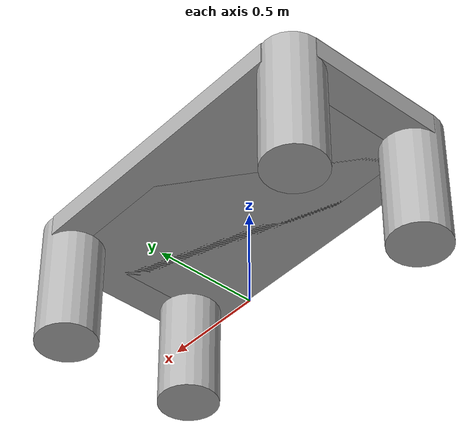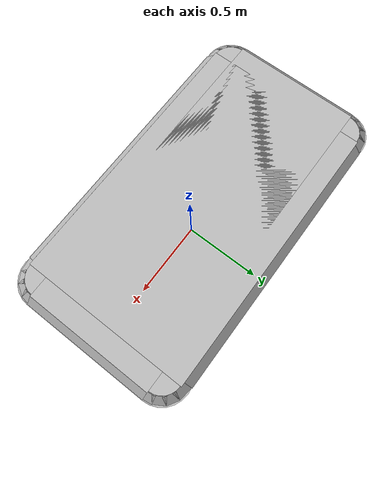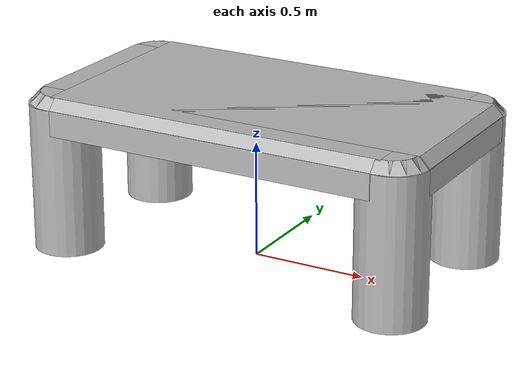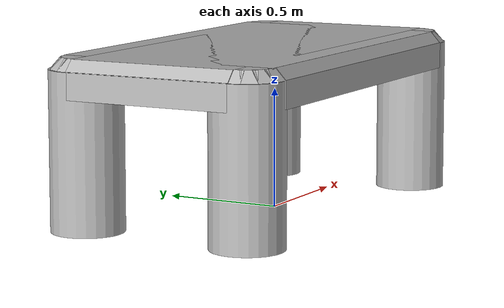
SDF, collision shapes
<?xml version="1.0" ?>
<sdf version="1.5">
  <model name="space_table">
    <static>true</static>

    <link name="link">

      <collision name="leg_1">
        <pose>-0.764945 -0.284224 0.317189 0 0 0</pose>
        <geometry>
          <cylinder>
           <radius>0.149455</radius>
           <length>0.648382</length>
          </cylinder>
        </geometry>
        <max_contacts>5</max_contacts>
      </collision>

      <collision name="leg_2">
        <pose>-0.764945 0.432866 0.317189 0 0 0</pose>
        <geometry>
          <cylinder>
           <radius>0.149455</radius>
           <length>0.648382</length>
          </cylinder>
        </geometry>
        <max_contacts>5</max_contacts>
      </collision>

      <collision name="leg_3">
        <pose>0.764945 -0.284224 0.317189 0 0 0</pose>
        <geometry>
          <cylinder>
           <radius>0.149455</radius>
           <length>0.648382</length>
          </cylinder>
        </geometry>
        <max_contacts>5</max_contacts>
      </collision>

      <collision name="leg_4">
        <pose>0.764945 0.432866 0.317189 0 0 0</pose>
        <geometry>
          <cylinder>
           <radius>0.149455</radius>
           <length>0.648382</length>
          </cylinder>
        </geometry>
        <max_contacts>5</max_contacts>
      </collision>

      <collision name="top_1">
        <pose>0 0.07432 0.588624 0 0 0</pose>
        <geometry>
          <box>
           <size>1.472479 1.016692 0.110764</size>
          </box>
        </geometry>
        <surface>
          <contact>
            <ode>
              <kp>1e5</kp>
              <kd>1</kd>
              <max_vel>0.1</max_vel>
              <min_depth>0.0015</min_depth>
            </ode>
          </contact>
        </surface>
      </collision>

      <collision name="top_2">
        <pose>0 0.07432 0.588624 0 0 0</pose>
        <geometry>
          <box>
           <size>1.82739 0.712958 0.110764</size>
          </box>
        </geometry>
        <surface>
          <contact>
            <ode>
              <kp>1e5</kp>
              <kd>1</kd>
              <max_vel>0.1</max_vel>
              <min_depth>0.0015</min_depth>
            </ode>
          </contact>
        </surface>
      </collision>

      <collision name="top_3">
        <pose>0 0.07432 0.61863 0 0 0</pose>
        <geometry>
          <box>
           <size>1.517309 0.929015 0.141255</size>
          </box>
        </geometry>
        <surface>
          <contact>
            <ode>
              <kp>1e5</kp>
              <kd>1</kd>
              <max_vel>0.1</max_vel>
              <min_depth>0.0015</min_depth>
            </ode>
          </contact>
        </surface>
      </collision>

      <collision name="top_4">
        <pose>0 0.07432 0.61863 0 0 0</pose>
        <geometry>
          <box>
           <size>1.741564 0.714353 0.141255</size>
          </box>
        </geometry>
        <surface>
          <contact>
            <ode>
              <kp>1e5</kp>
              <kd>1</kd>
              <max_vel>0.1</max_vel>
              <min_depth>0.0015</min_depth>
            </ode>
          </contact>
        </surface>
      </collision>

      <collision name="side_1">
        <pose>0 -0.402876 0.657118 -0.744512 0 0</pose>
        <geometry>
          <box>
           <size>1.472479 0.025006 0.064007</size>
          </box>
        </geometry>
        <max_contacts>5</max_contacts>
      </collision>

      <collision name="side_2">
        <pose>0 0.551784 0.657118 0.744512 0 0</pose>
        <geometry>
          <box>
           <size>1.472479 0.025006 0.064007</size>
          </box>
        </geometry>
        <max_contacts>5</max_contacts>
      </collision>

      <collision name="side_3">
        <pose>0.883448 0.07432 0.657118 0.744512 0 -1.5707</pose>
        <geometry>
          <box>
           <size>0.712958 0.025006 0.064007</size>
          </box>
        </geometry>
        <max_contacts>5</max_contacts>
      </collision>

      <collision name="side_4">
        <pose>-0.883448 0.07432 0.657118 -0.744512 0 -1.5707</pose>
        <geometry>
          <box>
           <size>0.712958 0.025006 0.064007</size>
          </box>
        </geometry>
        <max_contacts>5</max_contacts>
      </collision>

      <collision name="corner_1">
        <pose>0.758137 0.430006 0.656031 0 0 0</pose>
        <geometry>
          <cylinder>
           <radius>0.10331</radius>
           <length>0.066452</length>
          </cylinder>
        </geometry>
        <max_contacts>5</max_contacts>
      </collision>

      <collision name="corner_2">
        <pose>-0.758137 0.430006 0.656031 0 0 0</pose>
        <geometry>
          <cylinder>
           <radius>0.10331</radius>
           <length>0.066452</length>
          </cylinder>
        </geometry>
        <max_contacts>5</max_contacts>
      </collision>

      <collision name="corner_3">
        <pose>0.758137 -0.282311 0.656031 0 0 0</pose>
        <geometry>
          <cylinder>
           <radius>0.10331</radius>
           <length>0.066452</length>
          </cylinder>
        </geometry>
        <max_contacts>5</max_contacts>
      </collision>

      <collision name="corner_4">
        <pose>-0.758137 -0.282311 0.656031 0 0 0</pose>
        <geometry>
          <cylinder>
           <radius>0.10331</radius>
           <length>0.066452</length>
          </cylinder>
        </geometry>
        <max_contacts>5</max_contacts>
      </collision>

      <collision name="corner_1_a">
        <pose>0.769 0.543695 0.657118 -0.744512 0 2.999042654</pose>
        <geometry>
          <box>
           <size>0.075 0.025006 0.064007</size>
          </box>
        </geometry>
        <max_contacts>5</max_contacts>
      </collision>

      <collision name="corner_1_b">
        <pose>0.823 0.525499 0.657118 -0.744512 0 2.599042654</pose>
        <geometry>
          <box>
           <size>0.066 0.025006 0.064007</size>
          </box>
        </geometry>
        <max_contacts>5</max_contacts>
      </collision>

      <collision name="corner_1_c">
        <pose>0.858 0.489695 0.657118 -0.744512 0 2.108592654</pose>
        <geometry>
          <box>
           <size>0.067 0.025006 0.064007</size>
          </box>
        </geometry>
        <max_contacts>5</max_contacts>
      </collision>

      <collision name="corner_1_d">
        <pose>0.875288 0.448695 0.657118 -0.744512 0 1.721592654</pose>
        <geometry>
          <box>
           <size>0.048 0.025006 0.064007</size>
          </box>
        </geometry>
        <max_contacts>5</max_contacts>
      </collision>

      <collision name="corner_2_a">
        <pose>-0.769 0.543695 0.657118 -0.744512 0 -2.999042654</pose>
        <geometry>
          <box>
           <size>0.075 0.025006 0.064007</size>
          </box>
        </geometry>
        <max_contacts>5</max_contacts>
      </collision>

      <collision name="corner_2_b">
        <pose>-0.823 0.525499 0.657118 -0.744512 0 -2.599042654</pose>
        <geometry>
          <box>
           <size>0.066 0.025006 0.064007</size>
          </box>
        </geometry>
        <max_contacts>5</max_contacts>
      </collision>

      <collision name="corner_2_c">
        <pose>-0.858 0.489695 0.657118 -0.744512 0 -2.108592654</pose>
        <geometry>
          <box>
           <size>0.067 0.025006 0.064007</size>
          </box>
        </geometry>
        <max_contacts>5</max_contacts>
      </collision>

      <collision name="corner_2_d">
        <pose>-0.875288 0.448695 0.657118 -0.744512 0 -1.721592654</pose>
        <geometry>
          <box>
           <size>0.048 0.025006 0.064007</size>
          </box>
        </geometry>
        <max_contacts>5</max_contacts>
      </collision>

      <collision name="corner_3_a">
        <pose>0.769 -0.396 0.657118 -0.744512 0 0.14255</pose>
        <geometry>
          <box>
           <size>0.075 0.025006 0.064007</size>
          </box>
        </geometry>
        <max_contacts>5</max_contacts>
      </collision>

      <collision name="corner_3_b">
        <pose>0.823 -0.377804 0.657118 -0.744512 0 0.54255</pose>
        <geometry>
          <box>
           <size>0.066 0.025006 0.064007</size>
          </box>
        </geometry>
        <max_contacts>5</max_contacts>
      </collision>

      <collision name="corner_3_c">
        <pose>0.858 -0.342 0.657118 -0.744512 0 1.033</pose>
        <geometry>
          <box>
           <size>0.067 0.025006 0.064007</size>
          </box>
        </geometry>
        <max_contacts>5</max_contacts>
      </collision>

      <collision name="corner_3_d">
        <pose>0.875288 -0.301 0.657118 -0.744512 0 1.42</pose>
        <geometry>
          <box>
           <size>0.048 0.025006 0.064007</size>
          </box>
        </geometry>
        <max_contacts>5</max_contacts>
      </collision>

      <collision name="corner_4_a">
        <pose>-0.769 -0.396 0.657118 -0.744512 0 -0.14255</pose>
        <geometry>
          <box>
           <size>0.075 0.025006 0.064007</size>
          </box>
        </geometry>
        <max_contacts>5</max_contacts>
      </collision>

      <collision name="corner_4_b">
        <pose>-0.823 -0.377804 0.657118 -0.744512 0 -0.54255</pose>
        <geometry>
          <box>
           <size>0.066 0.025006 0.064007</size>
          </box>
        </geometry>
        <max_contacts>5</max_contacts>
      </collision>

      <collision name="corner_4_c">
        <pose>-0.858 -0.342 0.657118 -0.744512 0 -1.033</pose>
        <geometry>
          <box>
           <size>0.067 0.025006 0.064007</size>
          </box>
        </geometry>
        <max_contacts>5</max_contacts>
      </collision>

      <collision name="corner_4_d">
        <pose>-0.875288 -0.301 0.657118 -0.744512 0 -1.42</pose>
        <geometry>
          <box>
           <size>0.048 0.025006 0.064007</size>
          </box>
        </geometry>
        <max_contacts>5</max_contacts>
      </collision>

      <visual name="visual">
        <geometry>
          <mesh>
            <!-- in to m -->
            <scale>0.0254 0.0254 0.0254</scale>
            <uri>model://space_table/meshes/space_table.obj</uri>
          </mesh>
        </geometry>
      </visual>

    </link>

  </model>
</sdf>
